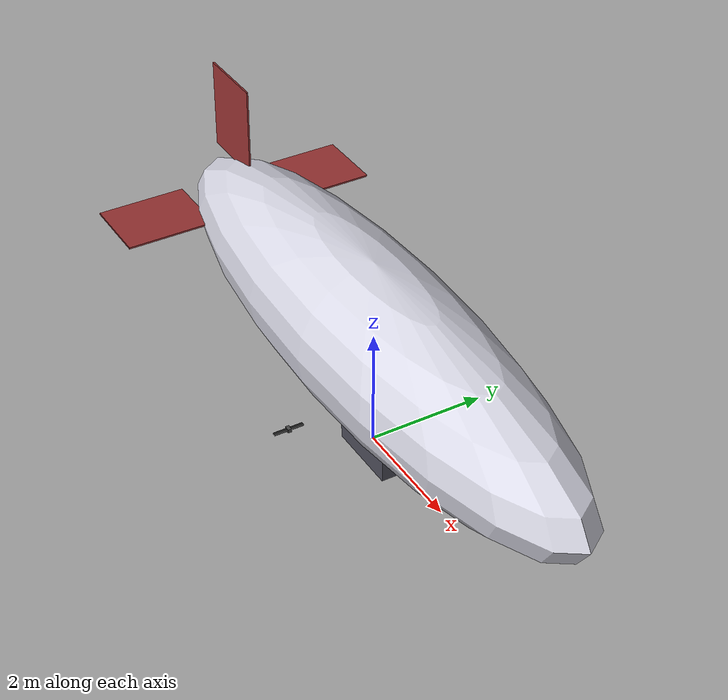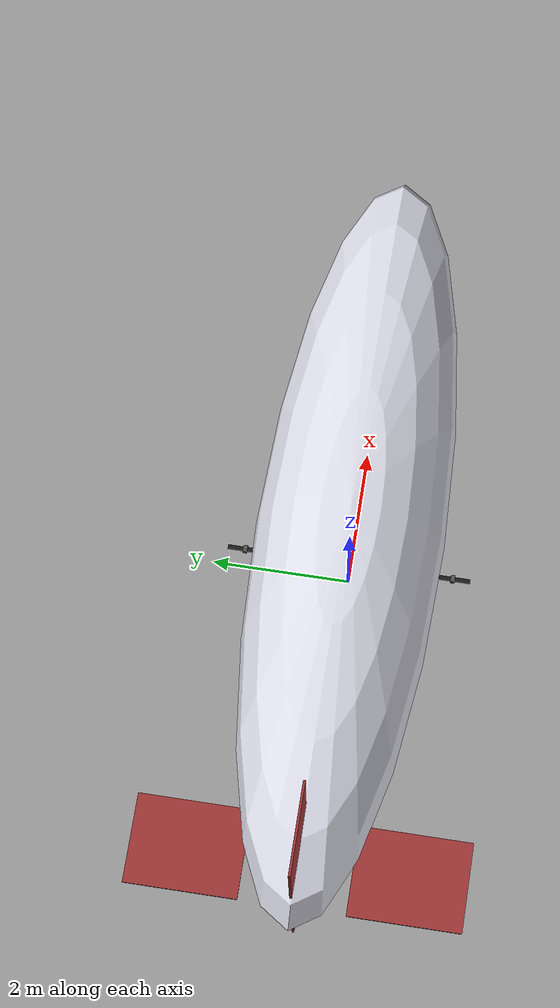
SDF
<?xml version="1.0" encoding="UTF-8"?>
<sdf version="1.10">
  <model name="airship_vectored_independent_drag">
    <include merge="true">
      <uri>model://airship_vectored_independent</uri>
    </include>
    <plugin filename="gz-sim-hydrodynamics-system" name="gz::sim::systems::Hydrodynamics">
      <link_name>base_link</link_name>
      <!-- Quadratic drag [N/(m/s)^2] -->
      <xUabsU>-0.2748</xUabsU>
      <yVabsV>-10.3954</yVabsV>
      <zWabsW>-10.3954</zWabsW>
      <!-- Rotational damping [N m/(rad/s)^2], with the linear roll term the
           very lightly damped roll mode needs [N m/(rad/s)] -->
      <kP>-8.0520</kP>
      <kPabsP>-36.2342</kPabsP>
      <mQabsQ>-241.5613</mQabsQ>
      <nRabsR>-241.5613</nRabsR>
      <xQabsU>-1.1267</xQabsU>
      <yPabsV>42.6210</yPabsV>
      <mUabsU>-0.5634</mUabsU>
      <mQabsU>-2.3098</mQabsU>
      <kVabsV>21.3105</kVabsV>
      <kPabsV>-87.3731</kPabsV>
      <disable_added_mass>true</disable_added_mass>
    </plugin>
  </model>
</sdf>

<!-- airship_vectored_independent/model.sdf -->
<sdf version="1.10">
  <model name="airship_vectored_independent">
    <include merge="true">
      <uri>model://airship_base</uri>
    </include>
    <link name="pod_starboard">
      <pose>0 -1.5 0.8125 0 0 0</pose>
      <inertial>
        <mass>0.4</mass>
        <inertia>
          <ixx>0.001</ixx>
          <iyy>0.001</iyy>
          <izz>0.001</izz>
        </inertia>
      </inertial>
      <visual name="pod_starboard_visual">
        <geometry>
          <box>
            <size>0.10 0.06 0.06</size>
          </box>
        </geometry>
        <material>
          <ambient>0.3 0.3 0.3 1</ambient>
          <diffuse>0.3 0.3 0.3 1</diffuse>
        </material>
      </visual>
    </link>
    <joint name="tilt_starboard_joint" type="revolute">
      <parent>base_link</parent>
      <child>pod_starboard</child>
      <axis>
        <xyz>0 -1 0</xyz>
        <limit>
          <lower>-3.141593</lower>
          <upper>3.141593</upper>
        </limit>
        <dynamics>
          <damping>0.01</damping>
        </dynamics>
      </axis>
    </joint>
    <link name="prop_starboard">
      <pose degrees="true">0 -1.5 0.8125 0 90 0</pose>
      <inertial>
        <mass>0.1</mass>
        <inertia>
          <ixx>0.001</ixx>
          <iyy>0.001</iyy>
          <izz>0.001</izz>
        </inertia>
      </inertial>
      <visual name="prop_starboard_visual">
        <geometry>
          <box>
            <size>0.02 0.5 0.06</size>
          </box>
        </geometry>
        <material>
          <ambient>0.1 0.1 0.1 1</ambient>
          <diffuse>0.1 0.1 0.1 1</diffuse>
        </material>
      </visual>
    </link>
    <joint name="prop_starboard_joint" type="revolute">
      <parent>pod_starboard</parent>
      <child>prop_starboard</child>
      <axis>
        <xyz>0 0 1</xyz>
        <limit>
          <lower>-1e+16</lower>
          <upper>1e+16</upper>
        </limit>
        <dynamics>
          <spring_reference>0</spring_reference>
          <spring_stiffness>0</spring_stiffness>
        </dynamics>
      </axis>
    </joint>
    <link name="pod_port">
      <pose>0 1.5 0.8125 0 0 0</pose>
      <inertial>
        <mass>0.4</mass>
        <inertia>
          <ixx>0.001</ixx>
          <iyy>0.001</iyy>
          <izz>0.001</izz>
        </inertia>
      </inertial>
      <visual name="pod_port_visual">
        <geometry>
          <box>
            <size>0.10 0.06 0.06</size>
          </box>
        </geometry>
        <material>
          <ambient>0.3 0.3 0.3 1</ambient>
          <diffuse>0.3 0.3 0.3 1</diffuse>
        </material>
      </visual>
    </link>
    <joint name="tilt_port_joint" type="revolute">
      <parent>base_link</parent>
      <child>pod_port</child>
      <axis>
        <xyz>0 -1 0</xyz>
        <limit>
          <lower>-3.141593</lower>
          <upper>3.141593</upper>
        </limit>
        <dynamics>
          <damping>0.01</damping>
        </dynamics>
      </axis>
    </joint>
    <link name="prop_port">
      <pose degrees="true">0 1.5 0.8125 0 90 0</pose>
      <inertial>
        <mass>0.1</mass>
        <inertia>
          <ixx>0.001</ixx>
          <iyy>0.001</iyy>
          <izz>0.001</izz>
        </inertia>
      </inertial>
      <visual name="prop_port_visual">
        <geometry>
          <box>
            <size>0.02 0.5 0.06</size>
          </box>
        </geometry>
        <material>
          <ambient>0.1 0.1 0.1 1</ambient>
          <diffuse>0.1 0.1 0.1 1</diffuse>
        </material>
      </visual>
    </link>
    <joint name="prop_port_joint" type="revolute">
      <parent>pod_port</parent>
      <child>prop_port</child>
      <axis>
        <xyz>0 0 1</xyz>
        <limit>
          <lower>-1e+16</lower>
          <upper>1e+16</upper>
        </limit>
        <dynamics>
          <spring_reference>0</spring_reference>
          <spring_stiffness>0</spring_stiffness>
        </dynamics>
      </axis>
    </joint>
    <plugin filename="gz-sim-joint-position-controller-system"
      name="gz::sim::systems::JointPositionController">
      <joint_name>tilt_starboard_joint</joint_name>
      <sub_topic>servo_0</sub_topic>
      <p_gain>2.0</p_gain>
      <i_gain>0.0</i_gain>
      <d_gain>0.1</d_gain>
    </plugin>
    <plugin filename="gz-sim-joint-position-controller-system"
      name="gz::sim::systems::JointPositionController">
      <joint_name>tilt_port_joint</joint_name>
      <sub_topic>servo_1</sub_topic>
      <p_gain>2.0</p_gain>
      <i_gain>0.0</i_gain>
      <d_gain>0.1</d_gain>
    </plugin>
    <plugin filename="gz-sim-multicopter-motor-model-system"
      name="gz::sim::systems::MulticopterMotorModel">
      <jointName>prop_starboard_joint</jointName>
      <linkName>prop_starboard</linkName>
      <turningDirection>ccw</turningDirection>
      <timeConstantUp>0.0125</timeConstantUp>
      <timeConstantDown>0.025</timeConstantDown>
      <maxRotVelocity>300.0</maxRotVelocity>
      <motorConstant>0.0002</motorConstant>
      <momentConstant>0.016</momentConstant>
      <commandSubTopic>command/motor_speed</commandSubTopic>
      <motorNumber>0</motorNumber>
      <rotorDragCoefficient>8.06428e-05</rotorDragCoefficient>
      <rollingMomentCoefficient>1e-06</rollingMomentCoefficient>
      <rotorVelocitySlowdownSim>10</rotorVelocitySlowdownSim>
      <motorType>velocity</motorType>
    </plugin>
    <plugin filename="gz-sim-multicopter-motor-model-system"
      name="gz::sim::systems::MulticopterMotorModel">
      <jointName>prop_port_joint</jointName>
      <linkName>prop_port</linkName>
      <turningDirection>cw</turningDirection>
      <timeConstantUp>0.0125</timeConstantUp>
      <timeConstantDown>0.025</timeConstantDown>
      <maxRotVelocity>300.0</maxRotVelocity>
      <motorConstant>0.0002</motorConstant>
      <momentConstant>0.016</momentConstant>
      <commandSubTopic>command/motor_speed</commandSubTopic>
      <motorNumber>1</motorNumber>
      <rotorDragCoefficient>8.06428e-05</rotorDragCoefficient>
      <rollingMomentCoefficient>1e-06</rollingMomentCoefficient>
      <rotorVelocitySlowdownSim>10</rotorVelocitySlowdownSim>
      <motorType>velocity</motorType>
    </plugin>
  </model>
</sdf>

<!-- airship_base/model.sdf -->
<sdf version="1.10">
  <model name="airship_base">
    <self_collide>false</self_collide>
    <static>false</static>
    <link name="base_link">
      <pose>0 0 0 0 0 0</pose>
      <inertial>
        <pose>0.0067 0.0000 0.8170 0 0 0</pose>
        <mass>48.0</mass>
        <inertia>
          <ixx>41.0847</ixx>
          <iyy>151.4753</iyy>
          <izz>126.8963</izz>
          <ixy>0.0000</ixy>
          <ixz>20.0700</ixz>
          <iyz>0.0000</iyz>
        </inertia>
      </inertial>
      <!-- The hull, drawn and collided alike; buoyancy volume 39.2 m^3 -->
      <collision name="hull_collision">
        <pose>0 0 2.05 0 0 0</pose>
        <geometry>
          <ellipsoid>
            <radii>5.48570 1.30612 1.30612</radii>
          </ellipsoid>
        </geometry>
      </collision>
      <!-- Ground contact; buoyancy volume 0.8 m^3 -->
      <collision name="gondola_collision">
        <pose>0.3277 0 0.4 0 0 0</pose>
        <geometry>
          <box>
            <size>1.25 0.8 0.8</size>
          </box>
        </geometry>
        <surface>
          <contact>
            <ode>
              <min_depth>0.001</min_depth>
              <max_vel>0</max_vel>
            </ode>
          </contact>
          <friction>
            <ode />
          </friction>
        </surface>
      </collision>
      <visual name="hull_visual">
        <pose>0 0 2.05 0 0 0</pose>
        <geometry>
          <ellipsoid>
            <radii>5.48570 1.30612 1.30612</radii>
          </ellipsoid>
        </geometry>
        <material>
          <ambient>0.85 0.85 0.9 1</ambient>
          <diffuse>0.85 0.85 0.9 1</diffuse>
          <specular>0.3 0.3 0.3 1</specular>
        </material>
      </visual>
      <visual name="gondola_visual">
        <pose>0.3277 0 0.4 0 0 0</pose>
        <geometry>
          <box>
            <size>1.25 0.8 0.8</size>
          </box>
        </geometry>
        <material>
          <ambient>0.3 0.3 0.35 1</ambient>
          <diffuse>0.3 0.3 0.35 1</diffuse>
          <specular>0.2 0.2 0.2 1</specular>
        </material>
      </visual>
      <visual name="fin_port_visual">
        <pose>-4.5857 1.4768 2.0500 0 0 0</pose>
        <geometry>
          <box>
            <size>1.20 1.52 0.03</size>
          </box>
        </geometry>
        <material>
          <ambient>0.6 0.2 0.2 1</ambient>
          <diffuse>0.6 0.2 0.2 1</diffuse>
        </material>
      </visual>
      <visual name="fin_starboard_visual">
        <pose>-4.5857 -1.4768 2.0500 0 0 0</pose>
        <geometry>
          <box>
            <size>1.20 1.52 0.03</size>
          </box>
        </geometry>
        <material>
          <ambient>0.6 0.2 0.2 1</ambient>
          <diffuse>0.6 0.2 0.2 1</diffuse>
        </material>
      </visual>
      <visual name="fin_top_visual">
        <pose>-4.5857 0.0000 3.5268 0 0 0</pose>
        <geometry>
          <box>
            <size>1.20 0.03 1.52</size>
          </box>
        </geometry>
        <material>
          <ambient>0.6 0.2 0.2 1</ambient>
          <diffuse>0.6 0.2 0.2 1</diffuse>
        </material>
      </visual>
      <visual name="fin_bottom_visual">
        <pose>-4.5857 0.0000 0.6932 0 0 0</pose>
        <geometry>
          <box>
            <size>1.20 0.03 1.28</size>
          </box>
        </geometry>
        <material>
          <ambient>0.6 0.2 0.2 1</ambient>
          <diffuse>0.6 0.2 0.2 1</diffuse>
        </material>
      </visual>
      <sensor name="air_pressure_sensor" type="air_pressure">
        <gz_frame_id>base_link</gz_frame_id>
        <always_on>1</always_on>
        <update_rate>50</update_rate>
        <air_pressure>
          <!-- Noise modeled after BMP390 -->
          <pressure>
            <noise type="gaussian">
              <mean>0</mean>
              <stddev>3</stddev>
            </noise>
          </pressure>
        </air_pressure>
      </sensor>
      <sensor name="magnetometer_sensor" type="magnetometer">
        <gz_frame_id>base_link</gz_frame_id>
        <always_on>1</always_on>
        <update_rate>100</update_rate>
        <magnetometer>
          <!-- TODO: update to fix units and coordinate system when we move past Harmonic -->
          <!-- See https://github.com/gazebosim/gz-sim/pull/2460 -->
          <!-- 3mgauss RMS: NOTE: noise is in tesla but sensor reports data in gauss -->
          <!-- Noise modeled after IIS2MDC -->
          <x>
            <noise type="gaussian">
              <stddev>0.0001</stddev>
            </noise>
          </x>
          <y>
            <noise type="gaussian">
              <stddev>0.0001</stddev>
            </noise>
          </y>
          <z>
            <noise type="gaussian">
              <stddev>0.0001</stddev>
            </noise>
          </z>
        </magnetometer>
      </sensor>
      <sensor name="imu_sensor" type="imu">
        <gz_frame_id>base_link</gz_frame_id>
        <always_on>1</always_on>
        <update_rate>250</update_rate>
        <imu>
          <angular_velocity>
            <!-- Noise modeled after IIM42653, 0.05 deg/s in rad/s -->
            <x>
              <noise type="gaussian">
                <mean>0.0</mean>
                <stddev>0.0008726646</stddev>
              </noise>
            </x>
            <y>
              <noise type="gaussian">
                <mean>0.0</mean>
                <stddev>0.0008726646</stddev>
              </noise>
            </y>
            <z>
              <noise type="gaussian">
                <mean>0.0</mean>
                <stddev>0.0008726646</stddev>
              </noise>
            </z>
          </angular_velocity>
          <linear_acceleration>
            <!-- Noise modeled after IIM42653, 0.65/0.70 mg-rms in m/s^2 -->
            <x>
              <noise type="gaussian">
                <mean>0.0</mean>
                <stddev>0.00637</stddev>
              </noise>
            </x>
            <y>
              <noise type="gaussian">
                <mean>0.0</mean>
                <stddev>0.00637</stddev>
              </noise>
            </y>
            <z>
              <noise type="gaussian">
                <mean>0.0</mean>
                <stddev>0.00686</stddev>
              </noise>
            </z>
          </linear_acceleration>
        </imu>
      </sensor>
      <sensor name="navsat_sensor" type="navsat">
        <gz_frame_id>base_link</gz_frame_id>
        <always_on>1</always_on>
        <update_rate>30</update_rate>
      </sensor>
    </link>
  </model>
</sdf>
